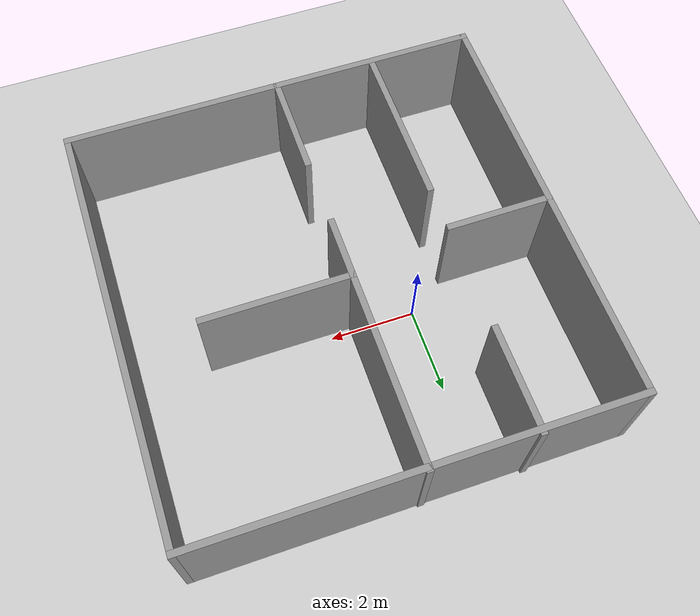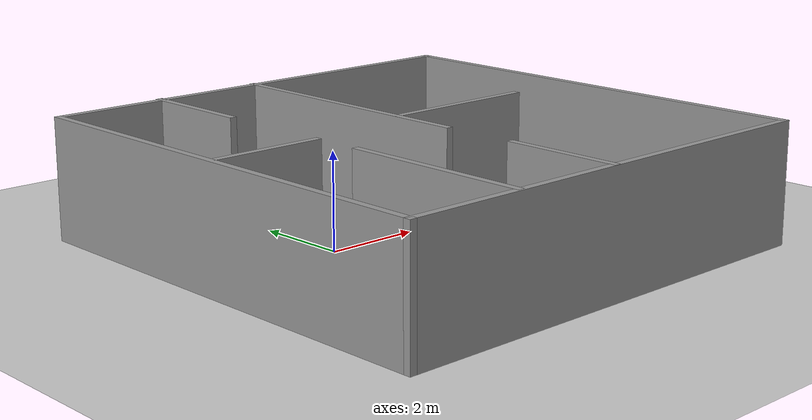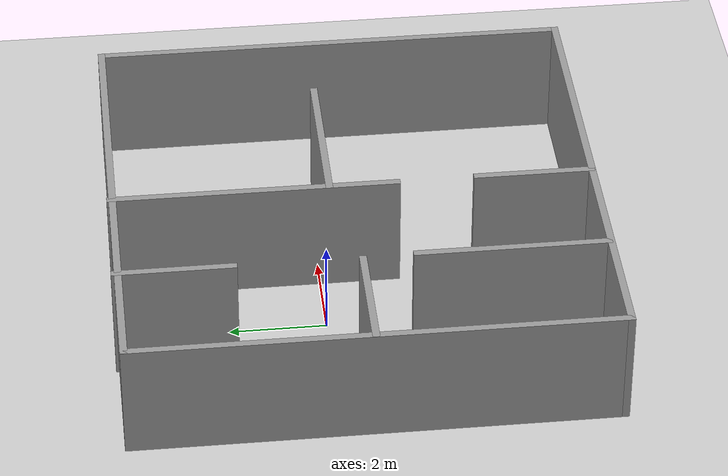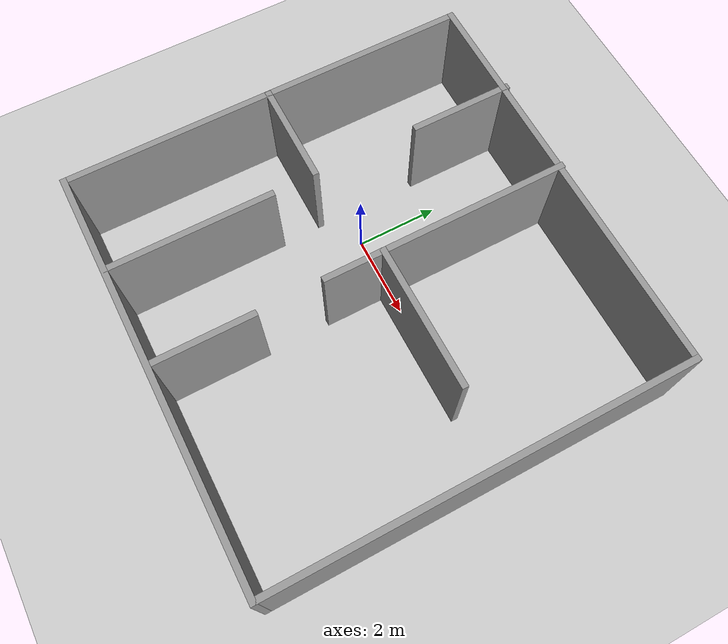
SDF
<sdf version="1.7">
 <world name="default">
  <model name="ground_plane">
   <static>1</static>
   <link name="link">
    <collision name="collision">
     <geometry><plane><normal>0 0 1</normal><size>100 100</size></plane></geometry>
     <surface><friction><ode><mu>100</mu><mu2>50</mu2></ode></friction></surface>
    </collision>
    <visual name="visual">
     <cast_shadows>0</cast_shadows>
     <geometry><plane><normal>0 0 1</normal><size>100 100</size></plane></geometry>
     <material>
      <script><uri>file://media/materials/scripts/gazebo.material</uri><name>Gazebo/Grey</name></script>
     </material>
    </visual>
   </link>
  </model>
  <light name="sun" type="directional">
   <pose>0 0 10 0 -0 0</pose>
   <diffuse>0.8 0.8 0.8 1</diffuse>
   <specular>0.2 0.2 0.2 1</specular>
   <attenuation>
    <range>1000</range>
    <constant>0.9</constant>
    <linear>0.01</linear>
    <quadratic>0.001</quadratic>
   </attenuation>
   <direction>-0.5 0.1 -0.9</direction>
   <spot><inner_angle>0</inner_angle><outer_angle>0</outer_angle><falloff>0</falloff></spot>
  </light>
  <scene><shadows>0</shadows><ambient>0.4 0.4 0.4 1</ambient><background>0.7 0.7 0.7 1</background></scene>
  <physics type="ode">
   <real_time_update_rate>1000</real_time_update_rate>
   <max_step_size>0.001</max_step_size>
   <real_time_factor>1</real_time_factor>
   <ode>
    <solver>
     <type>quick</type>
     <iters>150</iters>
     <precon_iters>0</precon_iters>
     <sor>1.4</sor>
     <use_dynamic_moi_rescaling>1</use_dynamic_moi_rescaling>
    </solver>
    <constraints>
     <cfm>1e-05</cfm>
     <erp>0.2</erp>
     <contact_max_correcting_vel>2000</contact_max_correcting_vel>
     <contact_surface_layer>0.01</contact_surface_layer>
    </constraints>
   </ode>
  </physics>
  <gravity>0 0 -9.8</gravity>
  <magnetic_field>6e-06 2.3e-05 -4.2e-05</magnetic_field>
  <atmosphere type="adiabatic"/>
  <audio><device>default</device></audio>
  <spherical_coordinates>
   <surface_model>EARTH_WGS84</surface_model>
   <latitude_deg>0</latitude_deg>
   <longitude_deg>0</longitude_deg>
   <elevation>0</elevation>
   <heading_deg>0</heading_deg>
  </spherical_coordinates>
  <model name="room.world">
   <pose>1.60502 -0.672576 0 0 -0 0</pose>
   <link name="Wall_0">
    <collision name="Wall_0_Collision">
     <geometry><box><size>10 0.15 2.5</size></box></geometry>
     <pose>0 0 1.25 0 -0 0</pose>
    </collision>
    <visual name="Wall_0_Visual">
     <pose>0 0 1.25 0 -0 0</pose>
     <geometry><box><size>10 0.15 2.5</size></box></geometry>
     <material>
      <script><uri>file://media/materials/scripts/gazebo.material</uri><name>Gazebo/Grey</name></script>
      <ambient>1 1 1 1</ambient>
     </material>
     <meta><layer>0</layer></meta>
    </visual>
    <pose>-0 4.89405 0 0 -0 0</pose>
   </link>
   <link name="Wall_1">
    <collision name="Wall_1_Collision">
     <geometry><box><size>10 0.15 2.5</size></box></geometry>
     <pose>0 0 1.25 0 -0 0</pose>
    </collision>
    <visual name="Wall_1_Visual">
     <pose>0 0 1.25 0 -0 0</pose>
     <geometry><box><size>10 0.15 2.5</size></box></geometry>
     <material>
      <script><uri>file://media/materials/scripts/gazebo.material</uri><name>Gazebo/Grey</name></script>
      <ambient>1 1 1 1</ambient>
     </material>
     <meta><layer>0</layer></meta>
    </visual>
    <pose>4.925 -0.030946 0 0 -0 -1.5708</pose>
   </link>
   <link name="Wall_11">
    <collision name="Wall_11_Collision">
     <geometry><box><size>3.5 0.15 2.5</size></box></geometry>
     <pose>0 0 1.25 0 -0 0</pose>
    </collision>
    <visual name="Wall_11_Visual">
     <pose>0 0 1.25 0 -0 0</pose>
     <geometry><box><size>3.5 0.15 2.5</size></box></geometry>
     <material>
      <script><uri>file://media/materials/scripts/gazebo.material</uri><name>Gazebo/Grey</name></script>
      <ambient>1 1 1 1</ambient>
     </material>
     <meta><layer>0</layer></meta>
    </visual>
    <pose>1.52643 0.468608 0 0 -0 0</pose>
   </link>
   <link name="Wall_13">
    <collision name="Wall_13_Collision">
     <geometry><box><size>4 0.15 2.5</size></box></geometry>
     <pose>0 0 1.25 0 -0 0</pose>
    </collision>
    <visual name="Wall_13_Visual">
     <pose>0 0 1.25 0 -0 0</pose>
     <geometry><box><size>4 0.15 2.5</size></box></geometry>
     <material>
      <script><uri>file://media/materials/scripts/gazebo.material</uri><name>Gazebo/Grey</name></script>
      <ambient>1 1 1 1</ambient>
     </material>
     <meta><layer>0</layer></meta>
    </visual>
    <pose>-2.50789 -2.98301 0 0 -0 -1.5708</pose>
   </link>
   <link name="Wall_15">
    <collision name="Wall_15_Collision">
     <geometry><box><size>2.5 0.15 2.5</size></box></geometry>
     <pose>0 0 1.25 0 -0 0</pose>
    </collision>
    <visual name="Wall_15_Visual">
     <pose>0 0 1.25 0 -0 0</pose>
     <geometry><box><size>2.5 0.15 2.5</size></box></geometry>
     <material>
      <script><uri>file://media/materials/scripts/gazebo.material</uri><name>Gazebo/Grey</name></script>
      <ambient>1 1 1 1</ambient>
     </material>
     <meta><layer>0</layer></meta>
    </visual>
    <pose>-0.125442 -3.75963 0 0 -0 -1.5708</pose>
   </link>
   <link name="Wall_2">
    <collision name="Wall_2_Collision">
     <geometry><box><size>10 0.15 2.5</size></box></geometry>
     <pose>0 0 1.25 0 -0 0</pose>
    </collision>
    <visual name="Wall_2_Visual">
     <pose>0 0 1.25 0 -0 0</pose>
     <geometry><box><size>10 0.15 2.5</size></box></geometry>
     <material>
      <script><uri>file://media/materials/scripts/gazebo.material</uri><name>Gazebo/Grey</name></script>
      <ambient>1 1 1 1</ambient>
     </material>
     <meta><layer>0</layer></meta>
    </visual>
    <pose>-0 -4.95595 0 0 -0 3.14159</pose>
   </link>
   <link name="Wall_3">
    <collision name="Wall_3_Collision">
     <geometry><box><size>10 0.15 2.5</size></box></geometry>
     <pose>0 0 1.25 0 -0 0</pose>
    </collision>
    <visual name="Wall_3_Visual">
     <pose>0 0 1.25 0 -0 0</pose>
     <geometry><box><size>10 0.15 2.5</size></box></geometry>
     <material>
      <script><uri>file://media/materials/scripts/gazebo.material</uri><name>Gazebo/Grey</name></script>
      <ambient>1 1 1 1</ambient>
     </material>
     <meta><layer>0</layer></meta>
    </visual>
    <pose>-4.925 -0.030946 0 0 -0 1.5708</pose>
   </link>
   <link name="Wall_5">
    <collision name="Wall_5_Collision">
     <geometry><box><size>2.5 0.15 2.5</size></box></geometry>
     <pose>0 0 1.25 0 -0 0</pose>
    </collision>
    <visual name="Wall_5_Visual">
     <pose>0 0 1.25 0 -0 0</pose>
     <geometry><box><size>2.5 0.15 2.5</size></box></geometry>
     <material>
      <script><uri>file://media/materials/scripts/gazebo.material</uri><name>Gazebo/Grey</name></script>
      <ambient>1 1 1 1</ambient>
     </material>
     <meta><layer>0</layer></meta>
    </visual>
    <pose>-2.53103 3.78095 0 0 -0 -1.5708</pose>
   </link>
   <link name="Wall_7">
    <collision name="Wall_7_Collision">
     <geometry><box><size>2.5 0.15 2.5</size></box></geometry>
     <pose>0 0 1.25 0 -0 0</pose>
    </collision>
    <visual name="Wall_7_Visual">
     <pose>0 0 1.25 0 -0 0</pose>
     <geometry><box><size>2.5 0.15 2.5</size></box></geometry>
     <material>
      <script><uri>file://media/materials/scripts/gazebo.material</uri><name>Gazebo/Grey</name></script>
      <ambient>1 1 1 1</ambient>
     </material>
     <meta><layer>0</layer></meta>
    </visual>
    <pose>-3.73848 0.029127 0 0 -0 0</pose>
   </link>
   <link name="Wall_9">
    <collision name="Wall_9_Collision">
     <geometry><box><size>6 0.15 2.5</size></box></geometry>
     <pose>0 0 1.25 0 -0 0</pose>
    </collision>
    <visual name="Wall_9_Visual">
     <pose>0 0 1.25 0 -0 0</pose>
     <geometry><box><size>6 0.15 2.5</size></box></geometry>
     <material>
      <script><uri>file://media/materials/scripts/gazebo.material</uri><name>Gazebo/Grey</name></script>
      <ambient>1 1 1 1</ambient>
     </material>
     <meta><layer>0</layer></meta>
    </visual>
    <pose>-0.148572 2.00781 0 0 -0 -1.5708</pose>
   </link>
   <static>1</static>
  </model>
 </world>
</sdf>
